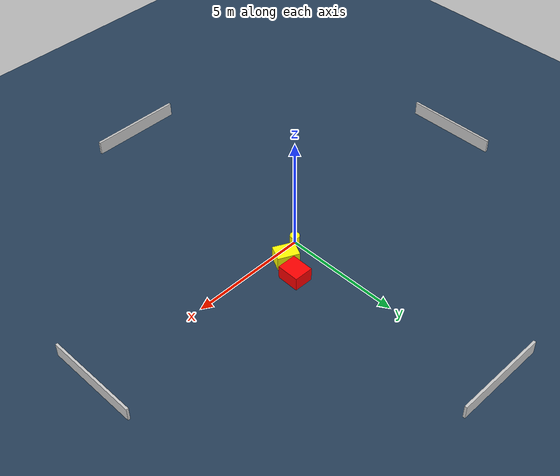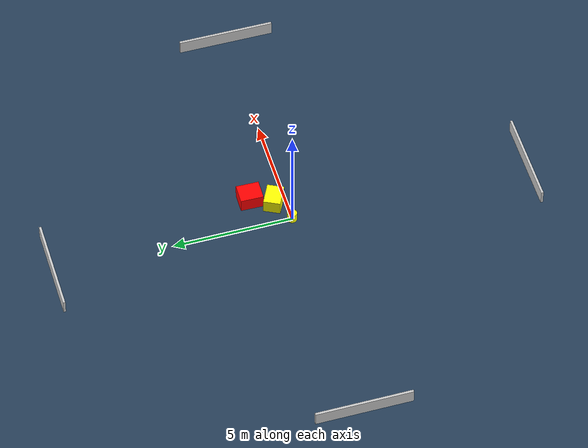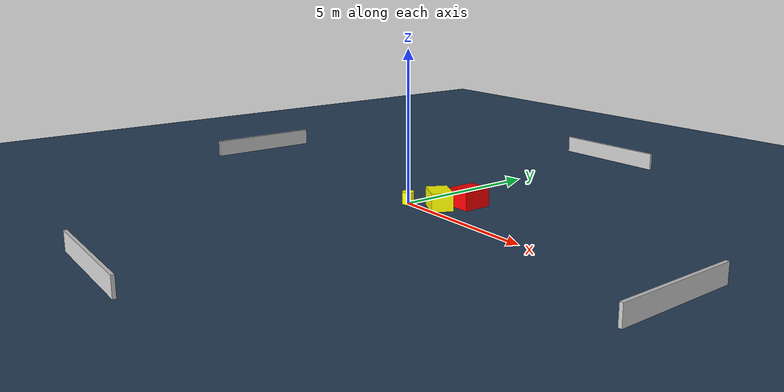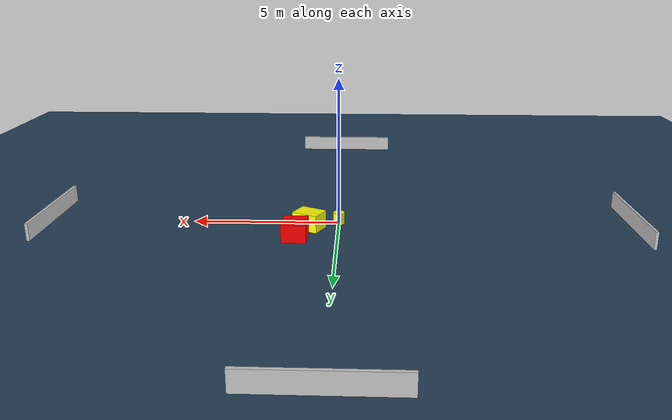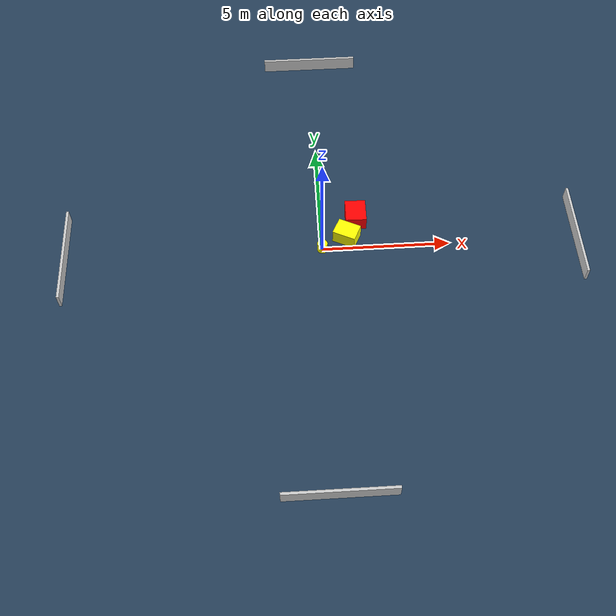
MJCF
<?xml version="1.0" ?>
<mujoco model="generated_environment">
  <option timestep="0.01" integrator="RK4" cone="elliptic"/>
  <default>
    <geom density="1"/>
  </default>
  <asset>
    <texture builtin="gradient" height="3072" name="skybox" rgb1="0.3 0.5 0.7" rgb2="0 0 0" type="skybox" width="512"/>
    <texture builtin="checker" height="300" name="groundplane" rgb1="0.2 0.3 0.4" rgb2="0.1 0.2 0.3" type="2d" width="300"/>
    <material name="groundplane" reflectance="0.2" texrepeat="5 5" texture="groundplane"/>
  </asset>
  <worldbody>
    <light dir="0 0 -1" directional="true" pos="0 0 1.5"/>
    <geom condim="3" friction="0.5 0.005 0.001" material="groundplane" name="floor" pos="0 0 0" size="0 0 0.05" type="plane"/>
    <body name="walls">
      <geom name="wall_1" condim="4" pos="-10.0 0.0 0.3" rgba="0.800000011920929 0.800000011920929 0.800000011920929 1.0" size="0.05 2.0 0.3" type="box"/>
      <geom name="wall_2" condim="4" pos="10.0 0.0 0.3" rgba="0.800000011920929 0.800000011920929 0.800000011920929 1.0" size="0.05 2.0 0.3" type="box"/>
      <geom name="wall_3" condim="4" pos="0.0 -10.0 0.3" rgba="0.800000011920929 0.800000011920929 0.800000011920929 1.0" size="2.0 0.05 0.3" type="box"/>
      <geom name="wall_4" condim="4" pos="0.0 10.0 0.3" rgba="0.800000011920929 0.800000011920929 0.800000011920929 1.0" size="2.0 0.05 0.3" type="box"/>
    </body>
    <body name="robot">
      <joint name="joint_x" type="slide" pos="0 0 0" axis="1 0 0"/>
      <joint name="joint_y" type="slide" pos="0 0 0" axis="0 1 0"/>
      <geom name="robot" type="cylinder" pos="0.0 0.0 0.2" size="0.2 0.2 0.0" mass="5.0" friction="1.0 0.005 0.0001" condim="4" rgba="1.0 1.0 0.0 1.0"/>
    </body>
    <body name="obstacle_1_movable">
      <geom name="obstacle_1_movable" condim="4" pos="0.9861849137494857 0.4923233434113654 0.3" euler="0 0 153.56054346225943" friction="0.0 0.005 0.001" rgba="1.0 1.0 0.0 1.0" size="0.45855689844502356 0.35065182161160524 0.3" type="box" mass="0.1"/>
      <joint type="free"/>
    </body>
    <body name="obstacle_2_static">
      <geom name="obstacle_2_static" condim="4" pos="1.3982465096738756 1.390834213663189 0.3" euler="0 0 268.9815091967795" friction="0.0 0.005 0.001" rgba="1.0 0.0 0.0 1.0" size="0.4767666010209725 0.40813022426302886 0.3" type="box"/>
    </body>
  </worldbody>
  <actuator>
    <motor name="actuator_x" joint="joint_x" gear="1" ctrlrange="-1 1"/>
    <motor name="actuator_y" joint="joint_y" gear="1" ctrlrange="-1 1"/>
  </actuator>
</mujoco>
